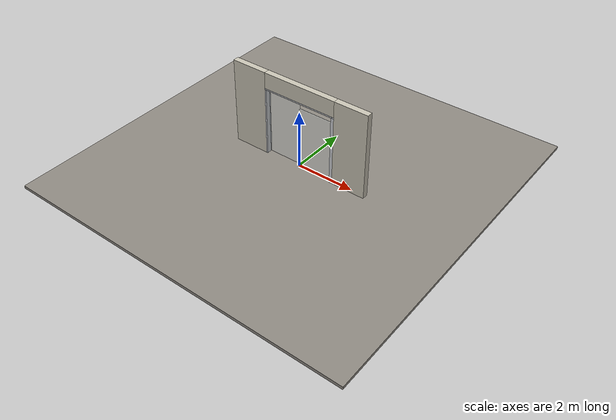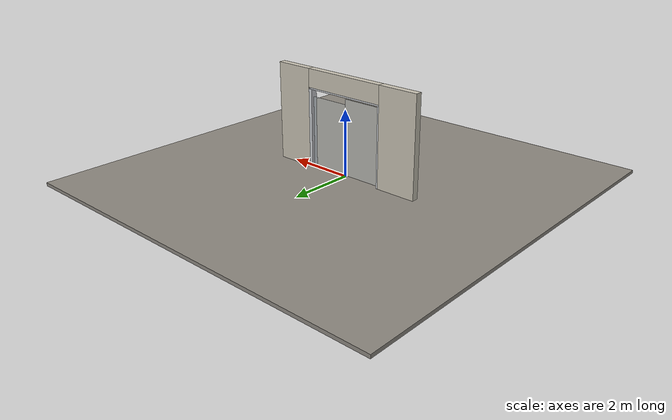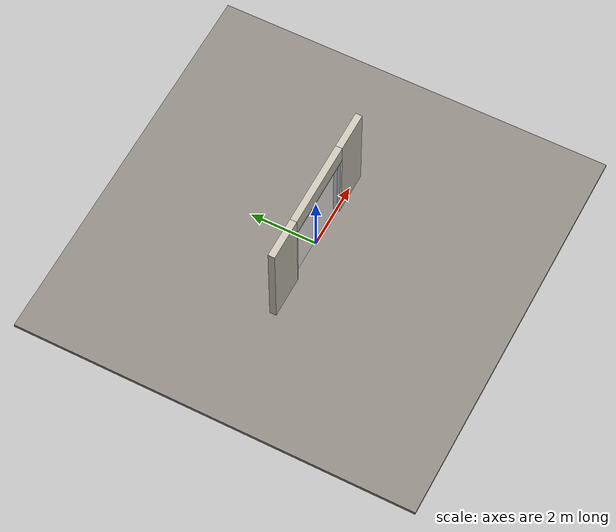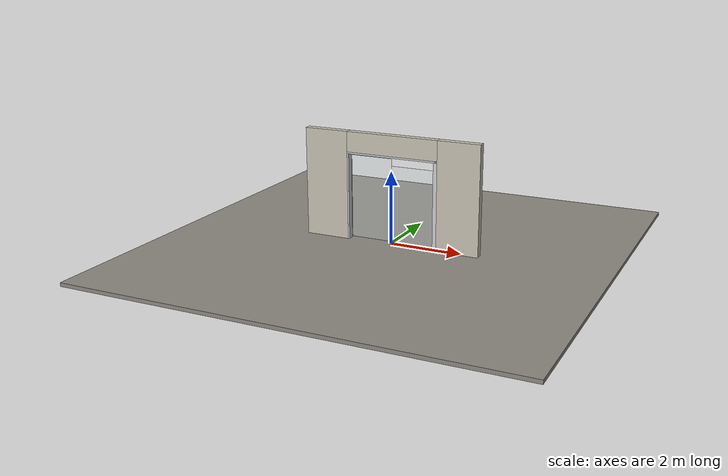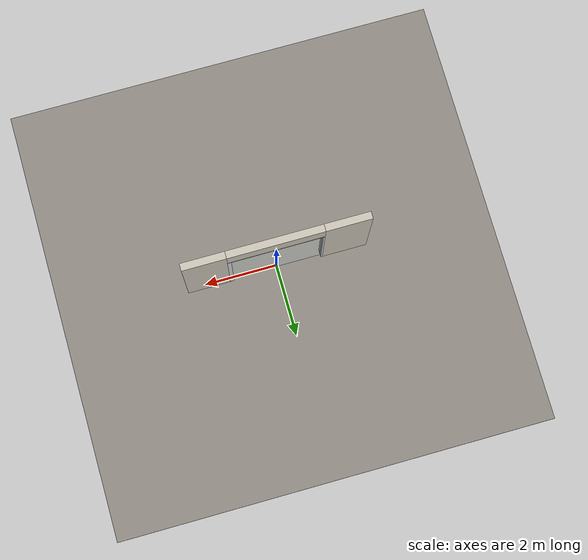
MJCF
<?xml version="1.0" ?>
<mujoco model="db0801_automatic_sliding_minimal">
  <compiler angle="radian" meshdir="../../hardware" texturedir="../../textures" autolimits="true" inertiafromgeom="false"/>
  <option timestep="0.002" integrator="implicitfast" cone="elliptic" impratio="10" noslip_iterations="3">
    <flag multiccd="enable"/>
  </option>
  <size memory="16M"/>
  <default>
    <geom condim="4" solref="0.005 1" solimp="0.95 0.99 0.001"/>
    <joint solreflimit="0.005 1" solimplimit="0.95 0.99 0.001"/>
    <tendon solreflimit="0.005 1"/>
    <equality solref="0.002 1"/>
  </default>
  <visual>
    <headlight ambient="0.4 0.4 0.4" diffuse="0.7 0.7 0.7" specular="0.2 0.2 0.2"/>
    <quality shadowsize="4096"/>
    <map znear="0.01" zfar="60"/>
  </visual>
  <asset>
    <material name="mat_floor" rgba="0.55 0.53 0.5 1" specular="0.2" shininess="0.15" reflectance="0"/>
    <material name="mat_wall" rgba="0.78 0.76 0.7 1" specular="0.2" shininess="0.1" reflectance="0"/>
    <material name="mat_frame" rgba="0.8 0.81 0.83 1" specular="0.8" shininess="0.6" reflectance="0.4"/>
    <material name="mat_track" rgba="0.8 0.81 0.83 1" specular="0.8" shininess="0.6" reflectance="0.4"/>
    <material name="mat_fixed_glass" rgba="0.85 0.92 0.95 0.25" specular="0.2" shininess="0.95" reflectance="0.1"/>
    <material name="mat_leaf" rgba="0.85 0.92 0.95 0.25" specular="0.2" shininess="0.95" reflectance="0.1"/>
    <material name="mat_glass_leaf" rgba="0.85 0.92 0.95 0.25" specular="0.2" shininess="0.95" reflectance="0.1"/>
    <material name="mat_patch" rgba="0.75 0.76 0.77 1" specular="0.8" shininess="0.65" reflectance="0.4"/>
    <material name="mat_roller" rgba="0.65 0.66 0.68 1" specular="0.74" shininess="0.5" reflectance="0.36"/>
    <material name="mat_ebolt" rgba="0.75 0.76 0.77 1" specular="0.8" shininess="0.65" reflectance="0.4"/>
    <material name="mat_hook" rgba="0.75 0.76 0.77 1" specular="0.8" shininess="0.65" reflectance="0.4"/>
    <material name="mat_sign" rgba="0.75 0.76 0.77 1" specular="0.8" shininess="0.65" reflectance="0.4"/>
    <material name="mat_wallreader" rgba="0.05 0.05 0.05 1" specular="0.38" shininess="0.3" reflectance="0.12"/>
    <texture name="skybox" type="skybox" builtin="gradient" rgb1="0.6 0.7 0.85" rgb2="0.9 0.92 0.95" width="256" height="256"/>
  </asset>
  <worldbody>
    <light name="sun" pos="1.5 -2.5 4" dir="-0.3 0.5 -0.8" directional="true" diffuse="0.8 0.8 0.8" specular="0.3 0.3 0.3" castshadow="true"/>
    <light name="fill" pos="-1.5 2.5 3" dir="0.3 -0.5 -0.7" directional="true" diffuse="0.35 0.35 0.4" castshadow="false"/>
    <camera name="robot_view" pos="0 -2.9125 2.0075" xyaxes="1 0 0 0 0.26963 0.962964" fovy="52"/>
    <camera name="far_view" pos="0 2.9125 2.0075" xyaxes="-1 0 0 0 -0.26963 0.962964" fovy="52"/>
    <camera name="iso" pos="2.2135 -2.4465 2.4735" xyaxes="0.741536 0.670913 0 -0.242917 0.268487 0.932151" fovy="46"/>
    <camera name="detail_handle" pos="0.48 -0.8 1.28" xyaxes="0.97561 0.219512 0 -0.070934 0.315262 0.94635" fovy="38"/>
    <geom name="floor" type="box" size="6 6 0.05" pos="0 0 -0.05" material="mat_floor" group="0" contype="1" conaffinity="1" friction="0.8 0.005 0.0001" density="2400"/>
    <geom name="wall_left" type="box" size="0.6175 0.1 1.492" pos="-1.8825 0 1.492" material="mat_wall" group="0" contype="1" conaffinity="1" friction="0.6 0.005 0.0001" density="800"/>
    <geom name="wall_right" type="box" size="0.5875 0.1 1.492" pos="1.9125 0 1.492" material="mat_wall" group="0" contype="1" conaffinity="1" friction="0.6 0.005 0.0001" density="800"/>
    <geom name="wall_header" type="box" size="1.295 0.1 0.2775" pos="0.03 0 2.7065" material="mat_wall" group="0" contype="1" conaffinity="1" friction="0.6 0.005 0.0001" density="800"/>
    <geom name="jamb_l" type="box" size="0.0225 0.1 1.192" pos="-1.2425 0 1.192" material="mat_frame" group="0" contype="1" conaffinity="1" friction="0.6 0.005 0.0001" density="300"/>
    <geom name="jamb_head" type="box" size="1.265 0.1 0.0225" pos="0 0 2.4065" material="mat_frame" group="0" contype="1" conaffinity="1" friction="0.6 0.005 0.0001" density="300"/>
    <geom name="fixed_panel_glass" type="box" size="0.59 0.003 1.142" pos="-0.61 0.04 1.192" material="mat_fixed_glass" group="0" contype="1" conaffinity="1" friction="0.6 0.005 0.0001" density="2500"/>
    <geom name="jamb_latch_0" type="box" size="0.0525 0.1 1.192" pos="1.2725 0 1.192" material="mat_frame" group="0" contype="1" conaffinity="1" friction="0.6 0.005 0.0001" density="300"/>
    <site name="approach_point" pos="0 -1.5 0" quat="1 0 0 0" size="0.05" rgba="0.2 0.9 0.2 0.5" group="4"/>
    <site name="goal_point" pos="0 1.5 0" quat="1 0 0 0" size="0.05" rgba="0.2 0.9 0.2 0.5" group="4"/>
    <site name="door_plane_center" pos="0 0 1.192" quat="1 0 0 0" size="0.02" rgba="0.2 0.9 0.2 0.5" group="4"/>
    <body name="leaf" pos="0.61 0 0">
      <inertial pos="0 0 1.079" mass="89.447232" quat="-0.5 0.5 0.5 0.5" diaginertia="10.748762119 33.959990975 44.678564653"/>
      <joint name="leaf_slide" type="slide" axis="-1 0 0" limited="true" range="0 1.18" damping="6.47988" frictionloss="21.087655" armature="0.5"/>
      <geom name="leaf_glass" type="box" size="0.6 0.0225 1.067" pos="0 0 1.079" material="mat_glass_leaf" group="0" contype="1" conaffinity="1" friction="0.4 0.005 0.0001" density="1"/>
      <site name="leaf_edge_mid" pos="0.6 0 1.079" quat="1 0 0 0" size="0.02" rgba="0.2 0.9 0.2 0.5" group="4"/>
    </body>
  </worldbody>
  <actuator>
    <position name="leaf_drive" joint="leaf_slide" kp="400" kv="60" forcerange="-150 150" ctrlrange="0 1.18"/>
  </actuator>
  <sensor>
    <jointpos name="leaf_slide_pos" joint="leaf_slide"/>
    <jointvel name="leaf_slide_vel" joint="leaf_slide"/>
  </sensor>
</mujoco>
